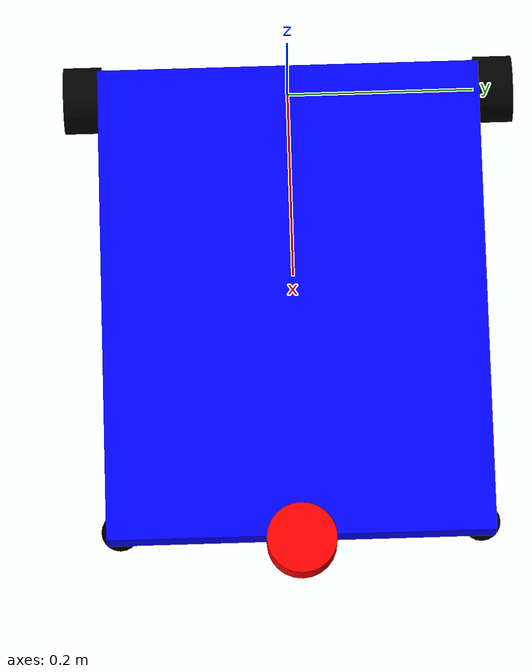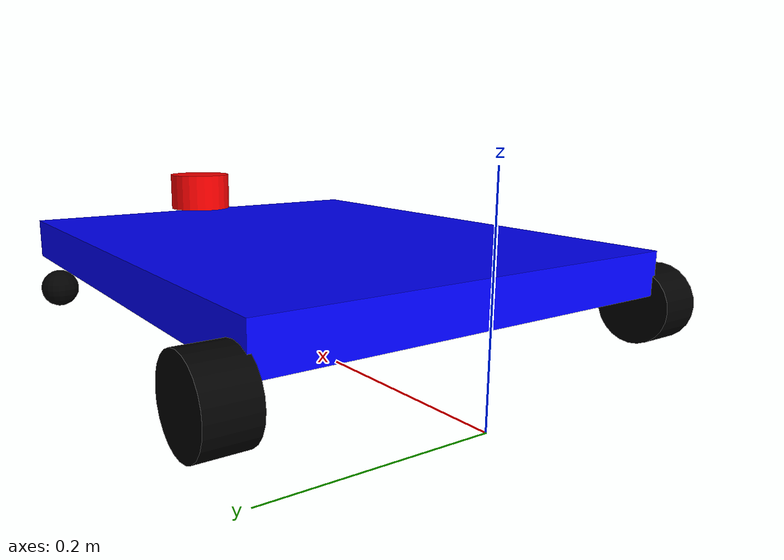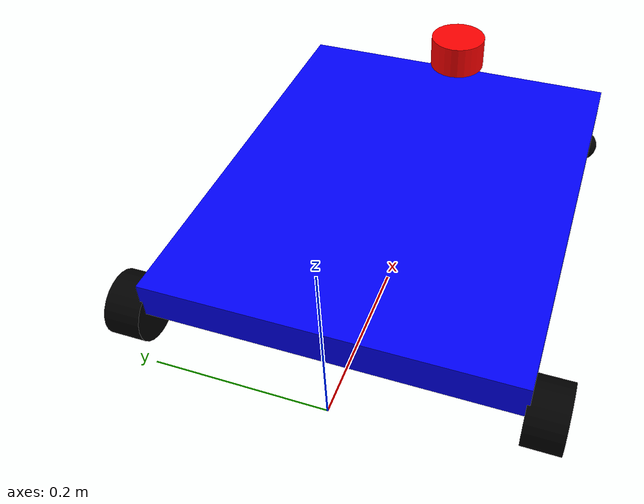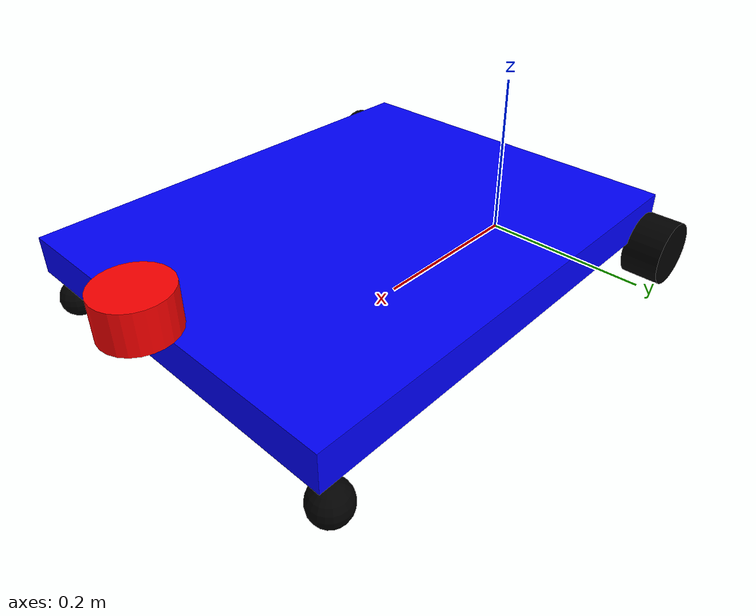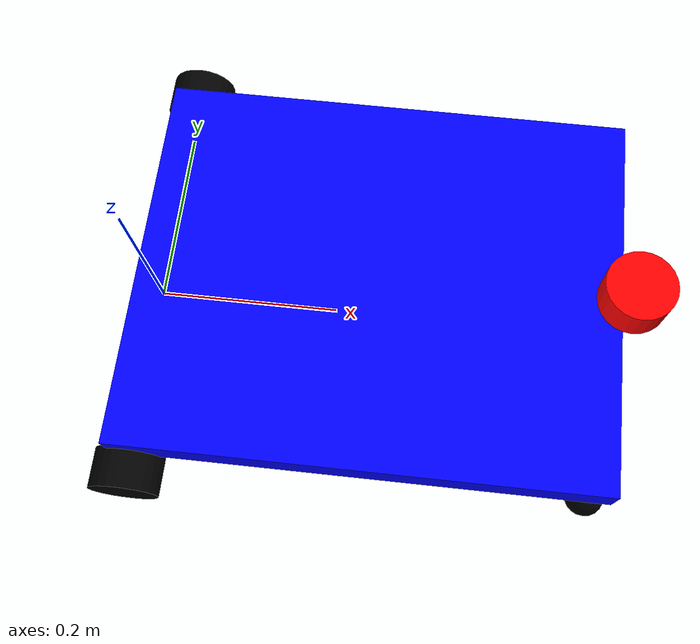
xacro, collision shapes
<?xml version="1.0"?>
<robot xmlns:xacro="http://www.ros.org/wiki/xacro"  name="Diff_Bot">

    <xacro:arg name="mesh_path" default="/tmp"/>
    <xacro:property name="mesh_path" value="$(arg mesh_path)"/>

    <xacro:include filename="inertial.xacro"/>
    <xacro:include filename="materials.xacro"/>

    <!-- ROS Control -->
    <xacro:include filename="ros2_control.xacro"/>

    <!-- Gazebo Plugins -->
    <xacro:include filename="gazebo.xacro"/>

<!-- Whole bot -->
    <xacro:include filename="body.urdf.xacro"/>

</robot>

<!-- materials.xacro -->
<robot xmlns:xacro="http://www.ros.org/wiki/xacro">

    <material name="white">
        <color rgba="1 1 1 1"/>
    </material>

    <material name="black">
        <color rgba="0 0 0 1"/>
    </material>

    <material name="grey">
        <color rgba="0.4 0.4 0.4 1"/>
    </material>

    <material name="red">
        <color rgba="1 0 0 1"/>
    </material>

    <material name="green">
        <color rgba="0 0.4 0 1"/>
    </material>

    <material name="blue">
        <color rgba="0 0 1 1"/>
    </material>

</robot>

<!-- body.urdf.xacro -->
<robot xmlns:xacro="http://www.ros.org/wiki/xacro">
  <!-- Variables -->
  <xacro:property name="base_length" value="0.498"/>
  <xacro:property name="base_width" value="0.4"/>
  <xacro:property name="base_height" value="0.04"/>
  <xacro:property name="wheel_radius" value="0.035" />
  <xacro:property name="wheel_width" value="0.04" />
  <xacro:property name="wheel_gap" value="0.009" />
  <xacro:property name="mesh_file_chassis" value="${mesh_path}/description/meshes/chassis.stl"/>

     <!-- Chassis -->
  <xacro:include filename="base.xacro"/>
  <xacro:base_link mesh_file_chassis="${mesh_file_chassis}"/>
    <!-- Caster -->
  <xacro:include filename="caster.xacro"/>
    <!-- Wheels -->
  <xacro:include filename="wheels.xacro"/>
    <!-- LIDAR -->
  <xacro:include filename="lidar.xacro"/>

  <xacro:lidar mesh_file_lidar="${mesh_path}/description/meshes/lidar.stl"/>

    <xacro:caster prefix="top_left" parent="base_plate" x="${base_length/2 + 0.23}" y="${base_width/2 - 0.012 }" z="${-caster_gap}" z_sign="-1"/>
    <xacro:caster prefix="top_right" parent="base_plate" x="${base_length/2 + 0.23}" y="-${base_width/2 - 0.012 }" z="${-caster_gap}" z_sign="1"/>

   <xacro:wheel prefix="left_wheel"
                 parent="base_plate" x="${base_length/2 - 0.248}"
                 y="-0.004"
                 z="0.0"
                 z_sign="1"
                 rx="3.141" ry="0" rz="0"
                 p="1"
                 mesh_file_wheel="${mesh_path}/description/meshes/wheel.stl"/>

    <xacro:wheel prefix="right_wheel"
                 parent="base_plate" x="${base_length/2 - 0.248}"
                 y="0.0"
                 z="0.0" z_sign="-1"
                 rx="0" ry="0" rz="0.0"
                 p="-1"
                 mesh_file_wheel="${mesh_path}/description/meshes/wheel.stl"/>

</robot>

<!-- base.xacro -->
<robot xmlns:xacro="http://www.ros.org/wiki/xacro" name="Diff_Bot_Base">

  <!-- Includes (outside macro) -->

  <!-- Variables -->
  <xacro:property name="base_length" value="0.498"/>
  <xacro:property name="base_width" value="0.4"/>
  <xacro:property name="base_height" value="0.04"/>
  <xacro:property name="top_length" value="0.246"/>
  <xacro:property name="top_width" value="0.361"/>
  <xacro:property name="top_height" value="0.03"/>
  <xacro:property name="clearance" value="0.05"/>
  <xacro:property name="mesh_file_chassis" value="${mesh_path}/description/meshes/chassis.stl"/>

  <xacro:macro name="base_link" params="mesh_file_chassis">

    <!-- Base Link -->
    <link name="base_link"/>

    <!-- Base Plate Joint -->
    <joint name="base_joint" type="fixed">
      <origin xyz="0.0 0.0 ${clearance + base_height + 0.01}"/>
      <parent link="base_link"/>
      <child link="base_plate"/>
    </joint>

    <!-- Base Plate Link -->
    <link name="base_plate">
      <visual>
        <origin xyz="0.0 0.0 -0.02"/>
        <geometry>
          <mesh filename="file://${mesh_file_chassis}"/>
        </geometry>
        <material name="blue"/>
      </visual>
      <collision>
        <origin xyz="0.25 0.0 0.0"/>
        <geometry>
          <box size="${base_length} ${base_width} ${base_height}"/>
        </geometry>
      </collision>
      <xacro:inertial_box mass="1.0" x="${base_length}" y="${base_width}" z="${base_height}">
        <origin xyz="0.25 0.0 0.0"/>
      </xacro:inertial_box>
    </link>

    <!-- Gazebo reference -->
    <gazebo reference="base_plate">
        <material>Gazebo/Blue</material>
    </gazebo>

  </xacro:macro>  <!-- ← this was missing -->

</robot>

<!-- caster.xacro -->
<robot xmlns:xacro="http://www.ros.org/wiki/xacro">

    <!-- Variables -->
    <xacro:property name="caster_radius" value="0.02" />
    <xacro:property name="caster_gap" value="0.055" />

    <!-- Caster Macro (sphere) -->
    <xacro:macro name="caster" params="prefix parent x y z z_sign">
        <joint name="${prefix}_joint" type="fixed">
            <parent link="${parent}"></parent>
            <child link="${prefix}_caster"></child>
            <origin xyz="${x} ${y} ${z}" rpy="0 0 0" />
            <axis xyz="0 1 0" />
        </joint>

        <link name="${prefix}_caster">
            <visual>
                <geometry>
                    <sphere radius="${caster_radius}"/>
                </geometry>
                <material name="black"/>
            </visual>

            <collision>
                <geometry>
                    <sphere radius="${caster_radius}"/>
                </geometry>
            </collision>

            <xacro:inertial_sphere mass="0.1" radius="${caster_radius}">
             <origin xyz="0 0 0"/>
            </xacro:inertial_sphere>
        </link>

        <!-- Gazebo reference -->
        <gazebo reference="${prefix}_caster">
            <material>Gazebo/Black</material>
            <mu1>0.0</mu1>   <!-- zero friction for caster -->
            <mu2>0.0</mu2>
            <kp>1000000.0</kp>
            <kd>1.0</kd>
        </gazebo>

    </xacro:macro>

    <!-- Casters (two at the bottom) -->
</robot>

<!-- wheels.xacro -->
<robot xmlns:xacro="http://www.ros.org/wiki/xacro">
  <!-- Variables -->
  <xacro:property name="wheel_radius" value="0.035" />
  <xacro:property name="wheel_width" value="0.04" />
  <xacro:property name="wheel_gap" value="0.009" />

  <!-- Wheel Macro -->
  <xacro:macro name="wheel" params="prefix parent x y z z_sign rx ry rz p
                                    mesh_file_wheel">

    <joint name="${prefix}_joint" type="continuous">
      <parent link="${parent}"></parent>
      <child link="${prefix}_wheel"></child>
      <origin xyz="${base_length/2 - 0.23} ${p*0.217} -0.032" rpy="0 0 0" />
      <axis xyz="0 1 0" />
  </joint>

    <link name="${prefix}_wheel">
      <visual>
        <origin xyz="${x} ${y} ${z}" rpy="${rx} ${ry} ${rz}"/>

        <geometry>
          <mesh filename="file://${mesh_file_wheel}" />
        </geometry>
        <material name="black"/>
      </visual>
      <collision>
        <origin xyz="0 0 0" rpy="${pi/2} 0 0"/>
        <geometry>
          <cylinder radius="${wheel_radius}" length="${wheel_width}"/>
        </geometry>
      </collision>
      <xacro:inertial_cylinder mass="0.1" radius="${wheel_radius}" length="${wheel_width}">
        <origin xyz="0 0 0" rpy="0 0 0"/>
      </xacro:inertial_cylinder>
    </link>

    <!-- Gazebo reference -->
    <gazebo reference="${prefix}_wheel">
        <material>Gazebo/Black</material>
        <mu1>0.9</mu1>   <!-- friction parameters for the wheels -->
        <mu2>0.9</mu2>
        <kp>1000000.0</kp>
        <kd>1.0</kd>
    </gazebo>

  </xacro:macro>
</robot>

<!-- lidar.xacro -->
<robot xmlns:xacro="http://www.ros.org/wiki/xacro">

  <!-- Variables -->
  <xacro:property name="lidar_height" value="0.042" />
  <xacro:property name="lidar_radius" value="0.036" />
  <xacro:macro name="lidar" params="mesh_file_lidar">

    <!-- Links -->
    <joint name="lidar_joint" type="fixed">
      <origin xyz="0 0 ${lidar_height}"/>
      <parent link="base_plate"/>
      <child link="lidar_link"/>
    </joint>

    <link name="lidar_link">
      <visual>
        <origin xyz="0.5079 0 -0.09"/>
        <geometry>
          <mesh filename="file://${mesh_file_lidar}" />
        </geometry>
        <material name="red">
        </material>
      </visual>
      <collision>
        <origin xyz="0.5079 0 0"/>
        <geometry>
          <cylinder length="${lidar_height}" radius="${lidar_radius}"/>
        </geometry>
      </collision>
      <xacro:inertial_cylinder mass="0.1" radius="${lidar_radius}" length="${lidar_height}">
        <origin xyz="0.5079 0 -0.0"/>
      </xacro:inertial_cylinder>
    </link>

  </xacro:macro>
</robot>
